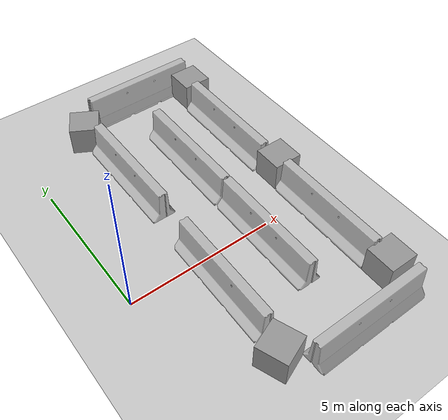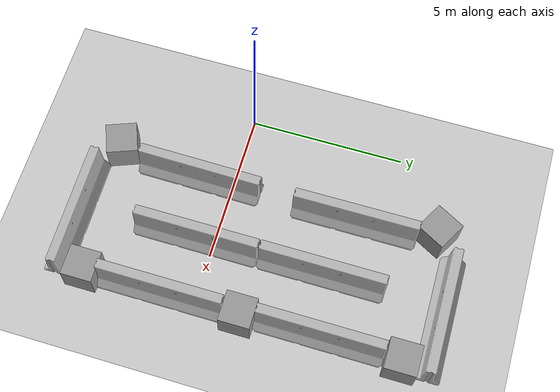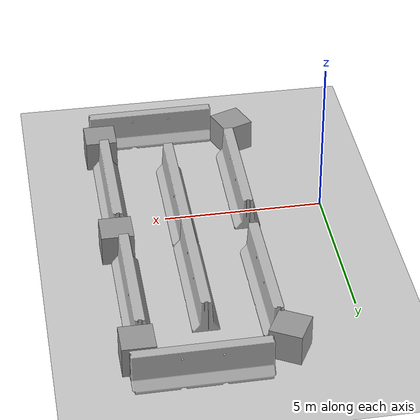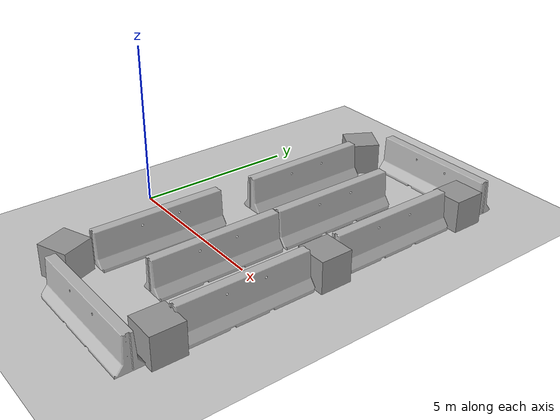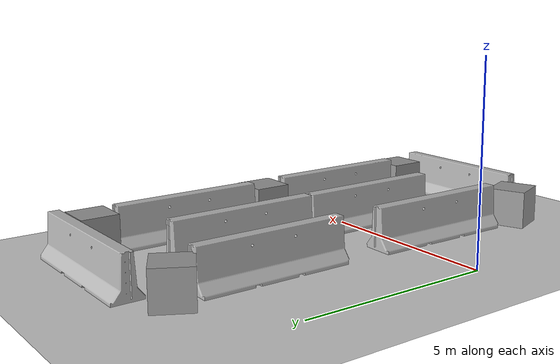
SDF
<sdf version="1.7">
 <world name="default">
  <light name="sun" type="directional">
   <pose>0 0 10 0 -0 0</pose>
   <diffuse>0.8 0.8 0.8 1</diffuse>
   <specular>0.2 0.2 0.2 1</specular>
   <attenuation>
    <range>1000</range>
    <constant>0.9</constant>
    <linear>0.01</linear>
    <quadratic>0.001</quadratic>
   </attenuation>
   <direction>-0.5 0.1 -0.9</direction>
   <spot><inner_angle>0</inner_angle><outer_angle>0</outer_angle><falloff>0</falloff></spot>
  </light>
  <model name="ground_plane">
   <static>1</static>
   <link name="link">
    <collision name="collision">
     <geometry><plane><normal>0 0 1</normal><size>100 100</size></plane></geometry>
     <surface>
      <contact><collide_bitmask>65535</collide_bitmask></contact>
      <friction><ode><mu>100</mu><mu2>50</mu2></ode></friction>
     </surface>
    </collision>
    <visual name="visual">
     <cast_shadows>0</cast_shadows>
     <geometry><plane><normal>0 0 1</normal><size>100 100</size></plane></geometry>
     <material>
      <script><uri>file://media/materials/scripts/gazebo.material</uri><name>Gazebo/Grey</name></script>
     </material>
    </visual>
   </link>
  </model>
  <gravity>0 0 -9.8</gravity>
  <magnetic_field>6e-06 2.3e-05 -4.2e-05</magnetic_field>
  <atmosphere type="adiabatic"/>
  <physics type="ode">
   <max_step_size>0.001</max_step_size>
   <real_time_factor>1</real_time_factor>
   <real_time_update_rate>1000</real_time_update_rate>
  </physics>
  <scene><ambient>0.4 0.4 0.4 1</ambient><background>0.7 0.7 0.7 1</background><shadows>1</shadows></scene>
  <spherical_coordinates>
   <surface_model>EARTH_WGS84</surface_model>
   <latitude_deg>0</latitude_deg>
   <longitude_deg>0</longitude_deg>
   <elevation>0</elevation>
   <heading_deg>0</heading_deg>
  </spherical_coordinates>
  <model name="jersey_barrier">
   <static>1</static>
   <link name="link">
    <visual name="visual">
     <geometry><mesh><uri>model://jersey_barrier/meshes/jersey_barrier.dae</uri></mesh></geometry>
    </visual>
    <collision name="upright">
     <pose>0 0 0.5715 0 -0 0</pose>
     <geometry><box><size>4.06542 0.3063 1.143</size></box></geometry>
    </collision>
    <collision name="base">
     <pose>0 0 0.032258 0 -0 0</pose>
     <geometry><box><size>4.06542 0.8107 0.064516</size></box></geometry>
    </collision>
    <collision name="base2">
     <pose>0 0 0.1 0 -0 0</pose>
     <geometry><box><size>4.06542 0.65 0.1</size></box></geometry>
    </collision>
    <collision name="base3">
     <pose>0 0 0.2 0 -0 0</pose>
     <geometry><box><size>4.06542 0.5 0.1</size></box></geometry>
    </collision>
    <collision name="left-angle">
     <pose>0 -0.224 0.2401 0.9 -0 0</pose>
     <geometry><box><size>4.06542 0.5 0.064516</size></box></geometry>
    </collision>
    <collision name="right-angle">
     <pose>0 0.224 0.2401 -0.9 0 0</pose>
     <geometry><box><size>4.06542 0.5 0.064516</size></box></geometry>
    </collision>
   </link>
   <pose>2.48475 -1.09314 0 0 0 -1.58316</pose>
  </model>
  <model name="jersey_barrier_clone">
   <static>1</static>
   <link name="link">
    <visual name="visual">
     <geometry><mesh><uri>model://jersey_barrier/meshes/jersey_barrier.dae</uri></mesh></geometry>
    </visual>
    <collision name="upright">
     <pose>0 0 0.5715 0 -0 0</pose>
     <geometry><box><size>4.06542 0.3063 1.143</size></box></geometry>
    </collision>
    <collision name="base">
     <pose>0 0 0.032258 0 -0 0</pose>
     <geometry><box><size>4.06542 0.8107 0.064516</size></box></geometry>
    </collision>
    <collision name="base2">
     <pose>0 0 0.1 0 -0 0</pose>
     <geometry><box><size>4.06542 0.65 0.1</size></box></geometry>
    </collision>
    <collision name="base3">
     <pose>0 0 0.2 0 -0 0</pose>
     <geometry><box><size>4.06542 0.5 0.1</size></box></geometry>
    </collision>
    <collision name="left-angle">
     <pose>0 -0.224 0.2401 0.9 -0 0</pose>
     <geometry><box><size>4.06542 0.5 0.064516</size></box></geometry>
    </collision>
    <collision name="right-angle">
     <pose>0 0.224 0.2401 -0.9 0 0</pose>
     <geometry><box><size>4.06542 0.5 0.064516</size></box></geometry>
    </collision>
   </link>
   <pose>2.54799 4.08652 0 0 0 -1.56854</pose>
  </model>
  <model name="jersey_barrier_clone_0">
   <static>1</static>
   <link name="link">
    <visual name="visual">
     <geometry><mesh><uri>model://jersey_barrier/meshes/jersey_barrier.dae</uri></mesh></geometry>
    </visual>
    <collision name="upright">
     <pose>0 0 0.5715 0 -0 0</pose>
     <geometry><box><size>4.06542 0.3063 1.143</size></box></geometry>
    </collision>
    <collision name="base">
     <pose>0 0 0.032258 0 -0 0</pose>
     <geometry><box><size>4.06542 0.8107 0.064516</size></box></geometry>
    </collision>
    <collision name="base2">
     <pose>0 0 0.1 0 -0 0</pose>
     <geometry><box><size>4.06542 0.65 0.1</size></box></geometry>
    </collision>
    <collision name="base3">
     <pose>0 0 0.2 0 -0 0</pose>
     <geometry><box><size>4.06542 0.5 0.1</size></box></geometry>
    </collision>
    <collision name="left-angle">
     <pose>0 -0.224 0.2401 0.9 -0 0</pose>
     <geometry><box><size>4.06542 0.5 0.064516</size></box></geometry>
    </collision>
    <collision name="right-angle">
     <pose>0 0.224 0.2401 -0.9 0 0</pose>
     <geometry><box><size>4.06542 0.5 0.064516</size></box></geometry>
    </collision>
   </link>
   <pose>4.54735 -0.542005 0 0 0 -1.57291</pose>
  </model>
  <model name="jersey_barrier_clone_0_clone">
   <static>1</static>
   <link name="link">
    <visual name="visual">
     <geometry><mesh><uri>model://jersey_barrier/meshes/jersey_barrier.dae</uri></mesh></geometry>
    </visual>
    <collision name="upright">
     <pose>0 0 0.5715 0 -0 0</pose>
     <geometry><box><size>4.06542 0.3063 1.143</size></box></geometry>
    </collision>
    <collision name="base">
     <pose>0 0 0.032258 0 -0 0</pose>
     <geometry><box><size>4.06542 0.8107 0.064516</size></box></geometry>
    </collision>
    <collision name="base2">
     <pose>0 0 0.1 0 -0 0</pose>
     <geometry><box><size>4.06542 0.65 0.1</size></box></geometry>
    </collision>
    <collision name="base3">
     <pose>0 0 0.2 0 -0 0</pose>
     <geometry><box><size>4.06542 0.5 0.1</size></box></geometry>
    </collision>
    <collision name="left-angle">
     <pose>0 -0.224 0.2401 0.9 -0 0</pose>
     <geometry><box><size>4.06542 0.5 0.064516</size></box></geometry>
    </collision>
    <collision name="right-angle">
     <pose>0 0.224 0.2401 -0.9 0 0</pose>
     <geometry><box><size>4.06542 0.5 0.064516</size></box></geometry>
    </collision>
   </link>
   <pose>4.5528 3.54617 0 0 0 -1.57291</pose>
  </model>
  <model name="jersey_barrier_clone_0_clone_clone">
   <static>1</static>
   <link name="link">
    <visual name="visual">
     <geometry><mesh><uri>model://jersey_barrier/meshes/jersey_barrier.dae</uri></mesh></geometry>
    </visual>
    <collision name="upright">
     <pose>0 0 0.5715 0 -0 0</pose>
     <geometry><box><size>4.06542 0.3063 1.143</size></box></geometry>
    </collision>
    <collision name="base">
     <pose>0 0 0.032258 0 -0 0</pose>
     <geometry><box><size>4.06542 0.8107 0.064516</size></box></geometry>
    </collision>
    <collision name="base2">
     <pose>0 0 0.1 0 -0 0</pose>
     <geometry><box><size>4.06542 0.65 0.1</size></box></geometry>
    </collision>
    <collision name="base3">
     <pose>0 0 0.2 0 -0 0</pose>
     <geometry><box><size>4.06542 0.5 0.1</size></box></geometry>
    </collision>
    <collision name="left-angle">
     <pose>0 -0.224 0.2401 0.9 -0 0</pose>
     <geometry><box><size>4.06542 0.5 0.064516</size></box></geometry>
    </collision>
    <collision name="right-angle">
     <pose>0 0.224 0.2401 -0.9 0 0</pose>
     <geometry><box><size>4.06542 0.5 0.064516</size></box></geometry>
    </collision>
   </link>
   <pose>6.52944 4.01833 0 0 0 -1.57291</pose>
  </model>
  <model name="jersey_barrier_clone_0_clone_clone_0">
   <static>1</static>
   <link name="link">
    <visual name="visual">
     <geometry><mesh><uri>model://jersey_barrier/meshes/jersey_barrier.dae</uri></mesh></geometry>
    </visual>
    <collision name="upright">
     <pose>0 0 0.5715 0 -0 0</pose>
     <geometry><box><size>4.06542 0.3063 1.143</size></box></geometry>
    </collision>
    <collision name="base">
     <pose>0 0 0.032258 0 -0 0</pose>
     <geometry><box><size>4.06542 0.8107 0.064516</size></box></geometry>
    </collision>
    <collision name="base2">
     <pose>0 0 0.1 0 -0 0</pose>
     <geometry><box><size>4.06542 0.65 0.1</size></box></geometry>
    </collision>
    <collision name="base3">
     <pose>0 0 0.2 0 -0 0</pose>
     <geometry><box><size>4.06542 0.5 0.1</size></box></geometry>
    </collision>
    <collision name="left-angle">
     <pose>0 -0.224 0.2401 0.9 -0 0</pose>
     <geometry><box><size>4.06542 0.5 0.064516</size></box></geometry>
    </collision>
    <collision name="right-angle">
     <pose>0 0.224 0.2401 -0.9 0 0</pose>
     <geometry><box><size>4.06542 0.5 0.064516</size></box></geometry>
    </collision>
   </link>
   <pose>6.57703 -1.06109 0 0 0 -1.57291</pose>
  </model>
  <model name="jersey_barrier_clone_0_clone_clone_1">
   <static>1</static>
   <link name="link">
    <visual name="visual">
     <geometry><mesh><uri>model://jersey_barrier/meshes/jersey_barrier.dae</uri></mesh></geometry>
    </visual>
    <collision name="upright">
     <pose>0 0 0.5715 0 -0 0</pose>
     <geometry><box><size>4.06542 0.3063 1.143</size></box></geometry>
    </collision>
    <collision name="base">
     <pose>0 0 0.032258 0 -0 0</pose>
     <geometry><box><size>4.06542 0.8107 0.064516</size></box></geometry>
    </collision>
    <collision name="base2">
     <pose>0 0 0.1 0 -0 0</pose>
     <geometry><box><size>4.06542 0.65 0.1</size></box></geometry>
    </collision>
    <collision name="base3">
     <pose>0 0 0.2 0 -0 0</pose>
     <geometry><box><size>4.06542 0.5 0.1</size></box></geometry>
    </collision>
    <collision name="left-angle">
     <pose>0 -0.224 0.2401 0.9 -0 0</pose>
     <geometry><box><size>4.06542 0.5 0.064516</size></box></geometry>
    </collision>
    <collision name="right-angle">
     <pose>0 0.224 0.2401 -0.9 0 0</pose>
     <geometry><box><size>4.06542 0.5 0.064516</size></box></geometry>
    </collision>
   </link>
   <pose>4.89088 -4.46355 0 0 0 -3.13326</pose>
  </model>
  <model name="jersey_barrier_clone_0_clone_clone_2">
   <static>1</static>
   <link name="link">
    <visual name="visual">
     <geometry><mesh><uri>model://jersey_barrier/meshes/jersey_barrier.dae</uri></mesh></geometry>
    </visual>
    <collision name="upright">
     <pose>0 0 0.5715 0 -0 0</pose>
     <geometry><box><size>4.06542 0.3063 1.143</size></box></geometry>
    </collision>
    <collision name="base">
     <pose>0 0 0.032258 0 -0 0</pose>
     <geometry><box><size>4.06542 0.8107 0.064516</size></box></geometry>
    </collision>
    <collision name="base2">
     <pose>0 0 0.1 0 -0 0</pose>
     <geometry><box><size>4.06542 0.65 0.1</size></box></geometry>
    </collision>
    <collision name="base3">
     <pose>0 0 0.2 0 -0 0</pose>
     <geometry><box><size>4.06542 0.5 0.1</size></box></geometry>
    </collision>
    <collision name="left-angle">
     <pose>0 -0.224 0.2401 0.9 -0 0</pose>
     <geometry><box><size>4.06542 0.5 0.064516</size></box></geometry>
    </collision>
    <collision name="right-angle">
     <pose>0 0.224 0.2401 -0.9 0 0</pose>
     <geometry><box><size>4.06542 0.5 0.064516</size></box></geometry>
    </collision>
   </link>
   <pose>4.95737 7.42274 0 0 -0 0.007408</pose>
  </model>
  <model name="static_box_clone_1">
   <link name="link">
    <inertial>
     <mass>1</mass>
     <inertia>
      <ixx>0.166667</ixx>
      <ixy>0</ixy>
      <ixz>0</ixz>
      <iyy>0.166667</iyy>
      <iyz>0</iyz>
      <izz>0.166667</izz>
     </inertia>
    </inertial>
    <visual name="visual">
     <geometry><box><size>1 1 1</size></box></geometry>
     <material>
      <script><name>Gazebo/Grey</name><uri>file://media/materials/scripts/gazebo.material</uri></script>
      <shader type="pixel"/>
     </material>
    </visual>
    <collision name="collision">
     <geometry><box><size>1 1 1</size></box></geometry>
     <surface>
      <friction>
       <ode><mu>1</mu><mu2>1</mu2><fdir1>0 0 0</fdir1><slip1>0</slip1><slip2>0</slip2></ode>
       <torsional>
        <coefficient>1</coefficient>
        <patch_radius>0</patch_radius>
        <surface_radius>0</surface_radius>
        <use_patch_radius>1</use_patch_radius>
        <ode><slip>0</slip></ode>
       </torsional>
      </friction>
      <bounce><restitution_coefficient>0</restitution_coefficient><threshold>1e+06</threshold></bounce>
      <contact>
       <collide_without_contact>0</collide_without_contact>
       <collide_without_contact_bitmask>1</collide_without_contact_bitmask>
       <collide_bitmask>1</collide_bitmask>
       <ode>
        <soft_cfm>0</soft_cfm>
        <soft_erp>0.2</soft_erp>
        <kp>1e+13</kp>
        <kd>1</kd>
        <max_vel>0.01</max_vel>
        <min_depth>0</min_depth>
       </ode>
       <bullet>
        <split_impulse>1</split_impulse>
        <split_impulse_penetration_threshold>-0.01</split_impulse_penetration_threshold>
        <soft_cfm>0</soft_cfm>
        <soft_erp>0.2</soft_erp>
        <kp>1e+13</kp>
        <kd>1</kd>
       </bullet>
      </contact>
     </surface>
    </collision>
   </link>
   <static>1</static>
   <pose>6.66288 -3.5528 0.499995 1e-05 -0 0</pose>
  </model>
  <model name="static_box_clone_2">
   <link name="link">
    <inertial>
     <mass>1</mass>
     <inertia>
      <ixx>0.166667</ixx>
      <ixy>0</ixy>
      <ixz>0</ixz>
      <iyy>0.166667</iyy>
      <iyz>0</iyz>
      <izz>0.166667</izz>
     </inertia>
    </inertial>
    <visual name="visual">
     <geometry><box><size>1 1 1</size></box></geometry>
     <material>
      <script><name>Gazebo/Grey</name><uri>file://media/materials/scripts/gazebo.material</uri></script>
      <shader type="pixel"/>
     </material>
    </visual>
    <collision name="collision">
     <geometry><box><size>1 1 1</size></box></geometry>
     <surface>
      <friction>
       <ode><mu>1</mu><mu2>1</mu2><fdir1>0 0 0</fdir1><slip1>0</slip1><slip2>0</slip2></ode>
       <torsional>
        <coefficient>1</coefficient>
        <patch_radius>0</patch_radius>
        <surface_radius>0</surface_radius>
        <use_patch_radius>1</use_patch_radius>
        <ode><slip>0</slip></ode>
       </torsional>
      </friction>
      <bounce><restitution_coefficient>0</restitution_coefficient><threshold>1e+06</threshold></bounce>
      <contact>
       <collide_without_contact>0</collide_without_contact>
       <collide_without_contact_bitmask>1</collide_without_contact_bitmask>
       <collide_bitmask>1</collide_bitmask>
       <ode>
        <soft_cfm>0</soft_cfm>
        <soft_erp>0.2</soft_erp>
        <kp>1e+13</kp>
        <kd>1</kd>
        <max_vel>0.01</max_vel>
        <min_depth>0</min_depth>
       </ode>
       <bullet>
        <split_impulse>1</split_impulse>
        <split_impulse_penetration_threshold>-0.01</split_impulse_penetration_threshold>
        <soft_cfm>0</soft_cfm>
        <soft_erp>0.2</soft_erp>
        <kp>1e+13</kp>
        <kd>1</kd>
       </bullet>
      </contact>
     </surface>
    </collision>
   </link>
   <static>1</static>
   <pose>6.70054 1.47957 0.499995 1e-05 -0 0</pose>
  </model>
  <model name="static_box_clone_3">
   <link name="link">
    <inertial>
     <mass>1</mass>
     <inertia>
      <ixx>0.166667</ixx>
      <ixy>0</ixy>
      <ixz>0</ixz>
      <iyy>0.166667</iyy>
      <iyz>0</iyz>
      <izz>0.166667</izz>
     </inertia>
    </inertial>
    <visual name="visual">
     <geometry><box><size>1 1 1</size></box></geometry>
     <material>
      <script><name>Gazebo/Grey</name><uri>file://media/materials/scripts/gazebo.material</uri></script>
      <shader type="pixel"/>
     </material>
    </visual>
    <collision name="collision">
     <geometry><box><size>1 1 1</size></box></geometry>
     <surface>
      <friction>
       <ode><mu>1</mu><mu2>1</mu2><fdir1>0 0 0</fdir1><slip1>0</slip1><slip2>0</slip2></ode>
       <torsional>
        <coefficient>1</coefficient>
        <patch_radius>0</patch_radius>
        <surface_radius>0</surface_radius>
        <use_patch_radius>1</use_patch_radius>
        <ode><slip>0</slip></ode>
       </torsional>
      </friction>
      <bounce><restitution_coefficient>0</restitution_coefficient><threshold>1e+06</threshold></bounce>
      <contact>
       <collide_without_contact>0</collide_without_contact>
       <collide_without_contact_bitmask>1</collide_without_contact_bitmask>
       <collide_bitmask>1</collide_bitmask>
       <ode>
        <soft_cfm>0</soft_cfm>
        <soft_erp>0.2</soft_erp>
        <kp>1e+13</kp>
        <kd>1</kd>
        <max_vel>0.01</max_vel>
        <min_depth>0</min_depth>
       </ode>
       <bullet>
        <split_impulse>1</split_impulse>
        <split_impulse_penetration_threshold>-0.01</split_impulse_penetration_threshold>
        <soft_cfm>0</soft_cfm>
        <soft_erp>0.2</soft_erp>
        <kp>1e+13</kp>
        <kd>1</kd>
       </bullet>
      </contact>
     </surface>
    </collision>
   </link>
   <static>1</static>
   <pose>6.68828 6.57331 0.499995 1e-05 -0 0</pose>
  </model>
  <model name="static_box_clone_4">
   <link name="link">
    <inertial>
     <mass>1</mass>
     <inertia>
      <ixx>0.166667</ixx>
      <ixy>0</ixy>
      <ixz>0</ixz>
      <iyy>0.166667</iyy>
      <iyz>0</iyz>
      <izz>0.166667</izz>
     </inertia>
    </inertial>
    <visual name="visual">
     <geometry><box><size>1 1 1</size></box></geometry>
     <material>
      <script><name>Gazebo/Grey</name><uri>file://media/materials/scripts/gazebo.material</uri></script>
      <shader type="pixel"/>
     </material>
    </visual>
    <collision name="collision">
     <geometry><box><size>1 1 1</size></box></geometry>
     <surface>
      <friction>
       <ode><mu>1</mu><mu2>1</mu2><fdir1>0 0 0</fdir1><slip1>0</slip1><slip2>0</slip2></ode>
       <torsional>
        <coefficient>1</coefficient>
        <patch_radius>0</patch_radius>
        <surface_radius>0</surface_radius>
        <use_patch_radius>1</use_patch_radius>
        <ode><slip>0</slip></ode>
       </torsional>
      </friction>
      <bounce><restitution_coefficient>0</restitution_coefficient><threshold>1e+06</threshold></bounce>
      <contact>
       <collide_without_contact>0</collide_without_contact>
       <collide_without_contact_bitmask>1</collide_without_contact_bitmask>
       <collide_bitmask>1</collide_bitmask>
       <ode>
        <soft_cfm>0</soft_cfm>
        <soft_erp>0.2</soft_erp>
        <kp>1e+13</kp>
        <kd>1</kd>
        <max_vel>0.01</max_vel>
        <min_depth>0</min_depth>
       </ode>
       <bullet>
        <split_impulse>1</split_impulse>
        <split_impulse_penetration_threshold>-0.01</split_impulse_penetration_threshold>
        <soft_cfm>0</soft_cfm>
        <soft_erp>0.2</soft_erp>
        <kp>1e+13</kp>
        <kd>1</kd>
       </bullet>
      </contact>
     </surface>
    </collision>
   </link>
   <static>1</static>
   <pose>2.31474 6.70495 0.499995 9e-06 5e-06 -0.506663</pose>
  </model>
  <model name="static_box_clone_5">
   <link name="link">
    <inertial>
     <mass>1</mass>
     <inertia>
      <ixx>0.166667</ixx>
      <ixy>0</ixy>
      <ixz>0</ixz>
      <iyy>0.166667</iyy>
      <iyz>0</iyz>
      <izz>0.166667</izz>
     </inertia>
    </inertial>
    <visual name="visual">
     <geometry><box><size>1 1 1</size></box></geometry>
     <material>
      <script><name>Gazebo/Grey</name><uri>file://media/materials/scripts/gazebo.material</uri></script>
      <shader type="pixel"/>
     </material>
    </visual>
    <collision name="collision">
     <geometry><box><size>1 1 1</size></box></geometry>
     <surface>
      <friction>
       <ode><mu>1</mu><mu2>1</mu2><fdir1>0 0 0</fdir1><slip1>0</slip1><slip2>0</slip2></ode>
       <torsional>
        <coefficient>1</coefficient>
        <patch_radius>0</patch_radius>
        <surface_radius>0</surface_radius>
        <use_patch_radius>1</use_patch_radius>
        <ode><slip>0</slip></ode>
       </torsional>
      </friction>
      <bounce><restitution_coefficient>0</restitution_coefficient><threshold>1e+06</threshold></bounce>
      <contact>
       <collide_without_contact>0</collide_without_contact>
       <collide_without_contact_bitmask>1</collide_without_contact_bitmask>
       <collide_bitmask>1</collide_bitmask>
       <ode>
        <soft_cfm>0</soft_cfm>
        <soft_erp>0.2</soft_erp>
        <kp>1e+13</kp>
        <kd>1</kd>
        <max_vel>0.01</max_vel>
        <min_depth>0</min_depth>
       </ode>
       <bullet>
        <split_impulse>1</split_impulse>
        <split_impulse_penetration_threshold>-0.01</split_impulse_penetration_threshold>
        <soft_cfm>0</soft_cfm>
        <soft_erp>0.2</soft_erp>
        <kp>1e+13</kp>
        <kd>1</kd>
       </bullet>
      </contact>
     </surface>
    </collision>
   </link>
   <static>1</static>
   <pose>2.24729 -3.81888 0.499993 9e-06 -4e-06 0.370048</pose>
  </model>
 </world>
</sdf>
